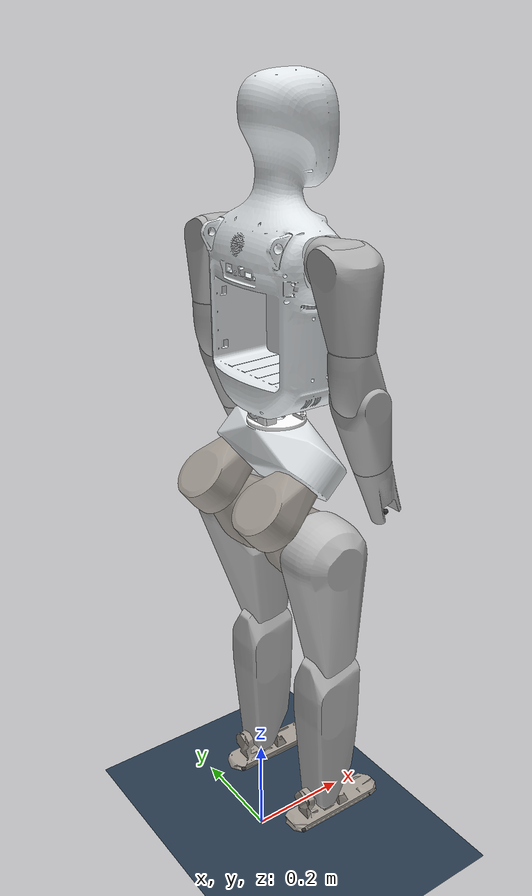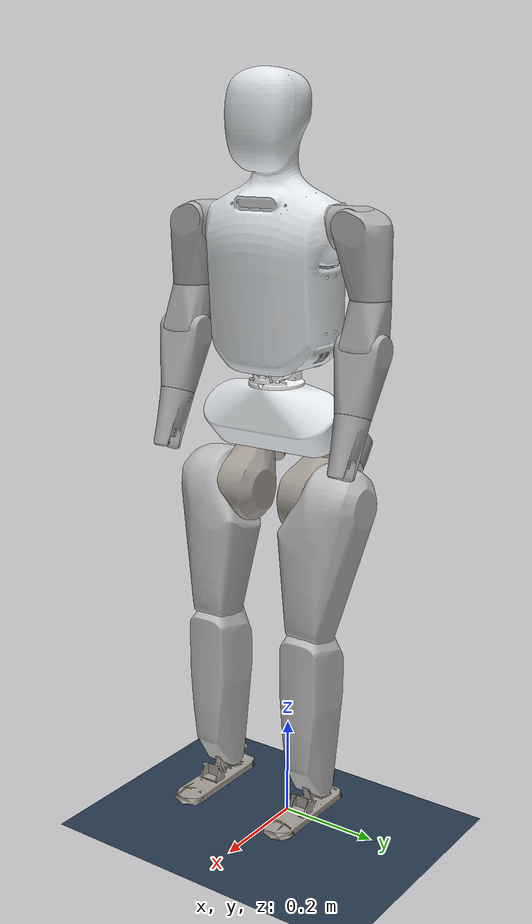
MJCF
<mujoco model="E1_1118">
  <compiler angle="radian" meshdir="meshes/"/>

  <default>
    <joint damping="0.001" armature="0.03" frictionloss="0.1"/>
  </default>
  <asset>
    <texture type="skybox" builtin="gradient" rgb1="0.3 0.5 0.7" rgb2="0 0 0" width="512" height="512"/>
    <texture name="texplane" type="2d" builtin="checker" rgb1=".2 .3 .4" rgb2=".1 0.15 0.2"
        width="512" height="512" mark="cross" markrgb=".8 .8 .8"/>

    <material name="matplane" reflectance="0." texture="texplane" texrepeat="1 1" texuniform="true"/>
    <mesh name="base_link" file="base_link.STL"/>
    <mesh name="waist_yaw_link" file="waist_yaw_link.STL"/>
    <mesh name="waist_roll_link" file="waist_roll_link.STL"/>
    <mesh name="r_arm_shoulder_pitch_link" file="r_arm_shoulder_pitch_link.STL"/>
    <mesh name="r_arm_shoulder_roll_link" file="r_arm_shoulder_roll_link.STL"/>
    <mesh name="r_arm_shoulder_yaw_link" file="r_arm_shoulder_yaw_link.STL"/>
    <mesh name="r_arm_elbow_pitch_link" file="r_arm_elbow_pitch_link.STL"/>
    <mesh name="r_arm_elbow_yaw_link" file="r_arm_elbow_yaw_link.STL"/>
    <mesh name="l_arm_shoulder_pitch_link" file="l_arm_shoulder_pitch_link.STL"/>
    <mesh name="l_arm_shoulder_roll_link" file="l_arm_shoulder_roll_link.STL"/>
    <mesh name="l_arm_shoulder_yaw_link" file="l_arm_shoulder_yaw_link.STL"/>
    <mesh name="l_arm_elbow_pitch_link" file="l_arm_elbow_pitch_link.STL"/>
    <mesh name="l_arm_elbow_yaw_link" file="l_arm_elbow_yaw_link.STL"/>
    <mesh name="r_leg_hip_yaw_link" file="r_leg_hip_yaw_link.STL"/>
    <mesh name="r_leg_hip_roll_link" file="r_leg_hip_roll_link.STL"/>
    <mesh name="r_leg_hip_pitch_link" file="r_leg_hip_pitch_link.STL"/>
    <mesh name="r_leg_knee_link" file="r_leg_knee_link.STL"/>
    <mesh name="r_leg_ankle_pitch_link" file="r_leg_ankle_pitch_link.STL"/>
    <mesh name="r_leg_ankle_roll_link" file="r_leg_ankle_roll_link.STL"/>
    <mesh name="l_leg_hip_yaw_link" file="l_leg_hip_yaw_link.STL"/>
    <mesh name="l_leg_hip_roll_link" file="l_leg_hip_roll_link.STL"/>
    <mesh name="l_leg_hip_pitch_link" file="l_leg_hip_pitch_link.STL"/>
    <mesh name="l_leg_knee_link" file="l_leg_knee_link.STL"/>
    <mesh name="l_leg_ankle_pitch_link" file="l_leg_ankle_pitch_link.STL"/>
    <mesh name="l_leg_ankle_roll_link" file="l_leg_ankle_roll_link.STL"/>
  </asset>

  <worldbody>
   <light directional="true" diffuse=".4 .4 .4" specular="0.1 0.1 0.1" pos="0 0 5.0" dir="0 0 -1" castshadow="false"/>
    <light directional="true" diffuse=".6 .6 .6" specular="0.2 0.2 0.2" pos="0 0 4" dir="0 0 -1"/>
    <geom name="ground" type="plane" size="0 0 1" pos="0.001 0 0" quat="1 0 0 0" material="matplane" condim="3" conaffinity='15'/>
    <body name="base_link" pos='0.0 0 0.85'>
      <inertial pos="0.046052 4.4711e-05 0.0021883" quat="0.654742 0.65493 -0.267018 0.266608" mass="3.6563" diaginertia="0.00948641 0.00787469 0.0043435"/>
      <geom type="mesh" mesh="base_link" contype="0" conaffinity="0" group="2" rgba="0.89804 0.91765 0.92941 1"/>
      <freejoint name="root" />
      <site name='imu' size='0.01' pos='0.0 0 0.0'/>
      <geom size="0.05 0.125 0.05" pos="0.07 0 0" type="box" rgba="0.89804 0.91765 0.92941 1" group="3"/>

      <body name="l_leg_hip_yaw_link" pos="0.054916 0.09 0.0038519" quat="0.923858 0 0.382735 0">
        <inertial pos="-0.017915 1.0596e-05 -0.10097" quat="0.999947 0.0101426 -0.00147073 -0.000244095" mass="1.4816" diaginertia="0.00247071 0.00140314 0.00131275"/>
        <geom type="mesh" mesh="l_leg_hip_yaw_link" contype="0" conaffinity="0" group="2" rgba="0.64706 0.61961 0.58824 1"/>
        <joint name="l_leg_hip_yaw_joint" pos="0 0 0" axis="0 0 1" range="-0.7 0.92"/>
        <geom size="0.05 0.005" pos="-0.02 0 -0.12" quat="0.707247 0 0.706967 0" type="cylinder" rgba="0.64706 0.61961 0.58824 1" group="3"/>
        <body name="l_leg_hip_roll_link" pos="0 0 -0.1185">
          <inertial pos="0.085701 -0.016584 -7.9104e-05" quat="0.494569 0.502567 0.504427 0.498379" mass="1.9235" diaginertia="0.00389647 0.00238089 0.00187874"/>
          <geom type="mesh" mesh="l_leg_hip_roll_link" contype="0" conaffinity="0" group="2" rgba="0.64706 0.61961 0.58824 1"/>
          <joint name="l_leg_hip_roll_joint" pos="0 0 0" axis="1 0 0" range="-0.7 0.61"/>
          <body name="l_leg_hip_pitch_link" pos="0.101 0 0" quat="0.923858 0 -0.382735 0">
            <inertial pos="0.014299 0.041463 -0.052859" quat="0.709992 -0.0888027 -0.0624697 0.69579" mass="4.147" diaginertia="0.0217231 0.0179788 0.00470995"/>
            <geom type="mesh" mesh="l_leg_hip_pitch_link" contype="0" conaffinity="0" group="2" rgba="0.75294 0.75294 0.75294 1"/>
            <joint name="l_leg_hip_pitch_joint" pos="0 0 0" axis="0 1 0" range="-1.48 0.87"/>
            <geom size="0.06 0.035" pos="0.03 0.02 0.02" quat="0.707105 0.707108 0 0" type="cylinder" rgba="0.75294 0.75294 0.75294 1" group="3"/>
            <geom size="0.07 0.035" pos="0.025 0.015 -0.155" type="cylinder" rgba="0.75294 0.75294 0.75294 1" group="3"/>
            <body name="l_leg_knee_link" pos="0.022251 0 -0.25403" quat="1 -1.4883e-05 0 0">
              <inertial pos="0.013831 0.017997 -0.12305" quat="0.705052 0.0134527 0.0111471 0.70894" mass="3.6766" diaginertia="0.0180812 0.0172019 0.00158974"/>
              <geom type="mesh" mesh="l_leg_knee_link" contype="0" conaffinity="0" group="2" rgba="0.75294 0.75294 0.75294 1"/>
              <joint name="l_leg_knee_joint" pos="0 0 0" axis="0 1 0" range="0 2.36"/>
              <geom size="0.06 0.1" pos="0.01 0.015 -0.17" type="cylinder" rgba="0.75294 0.75294 0.75294 1" group="3"/>
              <body name="l_leg_ankle_pitch_link" pos="3.9185e-05 0.018243 -0.315">
                <inertial pos="-0.0088522 -0.00030887 -6.821e-07" quat="0.5068 0.506725 0.493112 0.493178" mass="0.18171" diaginertia="4.45278e-05 3.7101e-05 2.32862e-05"/>
                <geom type="mesh" mesh="l_leg_ankle_pitch_link" contype="0" conaffinity="0" group="2" rgba="0.75294 0.75294 0.75294 1"/>
                <joint name="l_leg_ankle_pitch_joint" pos="0 0 0" axis="0 1 0" range="-1.01 0.42"/>
                <body name="l_leg_ankle_roll_link" quat="1 0 -5.1035e-05 0">
                  <inertial pos="0.021092 -7.0109e-05 -0.03295" quat="0.00102853 0.709531 -0.000682395 0.704673" mass="0.56573" diaginertia="0.00107334 0.001019 0.000195854"/>
	                  <geom type="mesh" mesh="l_leg_ankle_roll_link" contype="0" conaffinity="0" group="2" rgba="0.64706 0.61961 0.58824 1"/>
	                  <joint name="l_leg_ankle_roll_joint" pos="0 0 0" axis="1 0 0" range="-0.26 0.26"/>
	                  <geom size="0.1075 0.03 0.013" pos="0.036 -0.0005 -0.048" type="box" rgba="0.64706 0.61961 0.58824 1" group="3"/>
	                  <body name="l_foot_sphere_1_link" pos="-0.055 0.025 -0.0495">
	                    <inertial pos="0 0 0" mass="0.001" diaginertia="1e-7 1e-7 1e-7"/>
	                    <geom type="sphere" size="0.005" rgba="0.2 0.2 0.2 1" contype="0" conaffinity="0" density="0" group="1"/>
	                    <geom name="l_foot_sphere_1_link" type="sphere" size="0.005"/>
	                  </body>
	                  <body name="l_foot_sphere_2_link" pos="-0.055 -0.025 -0.0495">
	                    <inertial pos="0 0 0" mass="0.001" diaginertia="1e-7 1e-7 1e-7"/>
	                    <geom type="sphere" size="0.005" rgba="0.2 0.2 0.2 1" contype="0" conaffinity="0" density="0" group="1"/>
	                    <geom name="l_foot_sphere_2_link" type="sphere" size="0.005"/>
	                  </body>
	                  <body name="l_foot_sphere_3_link" pos="0.115 0.025 -0.0495">
	                    <inertial pos="0 0 0" mass="0.001" diaginertia="1e-7 1e-7 1e-7"/>
	                    <geom type="sphere" size="0.005" rgba="0.2 0.2 0.2 1" contype="0" conaffinity="0" density="0" group="1"/>
	                    <geom name="l_foot_sphere_3_link" type="sphere" size="0.005"/>
	                  </body>
	                  <body name="l_foot_sphere_4_link" pos="0.115 -0.025 -0.0495">
	                    <inertial pos="0 0 0" mass="0.001" diaginertia="1e-7 1e-7 1e-7"/>
	                    <geom type="sphere" size="0.005" rgba="0.2 0.2 0.2 1" contype="0" conaffinity="0" density="0" group="1"/>
	                    <geom name="l_foot_sphere_4_link" type="sphere" size="0.005"/>
	                  </body>
	                  <body name="l_foot_sphere_5_link" pos="0.14 0 -0.0495">
	                    <inertial pos="0 0 0" mass="0.001" diaginertia="1e-7 1e-7 1e-7"/>
	                    <geom type="sphere" size="0.005" rgba="0.2 0.2 0.2 1" contype="0" conaffinity="0" density="0" group="1"/>
	                    <geom name="l_foot_sphere_5_link" type="sphere" size="0.005"/>
	                  </body>
	                </body>
	              </body>
            </body>
          </body>
        </body>
      </body>

      <body name="r_leg_hip_yaw_link" pos="0.054916 -0.09 0.0038519" quat="0.923858 0 0.382735 0">
        <inertial pos="-0.017915 -1.0598e-05 -0.10263" quat="0.999946 -0.010146 -0.00238304 0.000233282" mass="1.4816" diaginertia="0.00247073 0.00140314 0.00131274"/>
        <geom type="mesh" mesh="r_leg_hip_yaw_link" contype="0" conaffinity="0" group="2" rgba="0.64706 0.61961 0.58824 1"/>
        <joint name="r_leg_hip_yaw_joint" pos="0 0 0" axis="0 0 1" range="-0.92 0.7"/>
        <geom size="0.05 0.005" pos="-0.02 0 -0.12" quat="0.707247 0 0.706967 0" type="cylinder" rgba="0.64706 0.61961 0.58824 1" group="3"/>
        <body name="r_leg_hip_roll_link" pos="0 0 -0.1185">
          <inertial pos="0.086978 0.016584 -7.9149e-05" quat="0.497566 0.505487 0.503353 0.493505" mass="1.9235" diaginertia="0.00389648 0.00238095 0.00187866"/>
          <geom type="mesh" mesh="r_leg_hip_roll_link" contype="0" conaffinity="0" group="2" rgba="0.64706 0.61961 0.58824 1"/>
          <joint name="r_leg_hip_roll_joint" pos="0 0 0" axis="1 0 0" range="-0.61 0.7"/>
          <body name="r_leg_hip_pitch_link" pos="0.101 0 0" quat="0.923858 0 -0.382735 0">
            <inertial pos="0.014292 -0.041458 -0.052861" quat="0.695757 -0.0625051 -0.0888325 0.710017" mass="4.1464" diaginertia="0.0217201 0.0179762 0.00470924"/>
            <geom type="mesh" mesh="r_leg_hip_pitch_link" contype="0" conaffinity="0" group="2" rgba="0.75294 0.75294 0.75294 1"/>
            <joint name="r_leg_hip_pitch_joint" pos="0 0 0" axis="0 1 0" range="-1.48 0.87"/>
            <geom size="0.06 0.035" pos="0.03 -0.02 0.02" quat="0.707105 0.707108 0 0" type="cylinder" rgba="0.75294 0.75294 0.75294 1" group="3"/>
            <geom size="0.07 0.035" pos="0.025 -0.015 -0.155" type="cylinder" rgba="0.75294 0.75294 0.75294 1" group="3"/>
            <body name="r_leg_knee_link" pos="0.022251 0 -0.25403" quat="1 1.4883e-05 0 0">
              <inertial pos="0.013832 -0.017558 -0.12305" quat="0.708877 0.0111556 0.0134579 0.705115" mass="3.6767" diaginertia="0.0180822 0.0172029 0.00158981"/>
              <geom type="mesh" mesh="r_leg_knee_link" contype="0" conaffinity="0" group="2" rgba="0.75294 0.75294 0.75294 1"/>
              <joint name="r_leg_knee_joint" pos="0 0 0" axis="0 1 0" range="0 2.36"/>
              <geom size="0.06 0.1" pos="0.01 -0.015 -0.17" type="cylinder" rgba="0.75294 0.75294 0.75294 1" group="3"/>
              <body name="r_leg_ankle_pitch_link" pos="3.9185e-05 -0.018242 -0.315">
                <inertial pos="-0.0088522 0.00030863 -2.4947e-07" quat="0.493138 0.493155 0.506773 0.506749" mass="0.18171" diaginertia="4.45277e-05 3.7101e-05 2.32863e-05"/>
                <geom type="mesh" mesh="r_leg_ankle_pitch_link" contype="0" conaffinity="0" group="2" rgba="0.75294 0.75294 0.75294 1"/>
                <joint name="r_leg_ankle_pitch_joint" pos="0 0 0" axis="0 1 0" range="-1.01 0.42"/>
                <body name="r_leg_ankle_roll_link">
                  <inertial pos="0.021092 6.9792e-05 -0.03295" quat="-0.00102811 0.709531 0.000682639 0.704673" mass="0.56573" diaginertia="0.00107334 0.001019 0.000195854"/>
	                  <geom type="mesh" mesh="r_leg_ankle_roll_link" contype="0" conaffinity="0" group="2" rgba="0.64706 0.61961 0.58824 1"/>
	                  <joint name="r_leg_ankle_roll_joint" pos="0 0 0" axis="1 0 0" range="-0.26 0.26"/>
	                  <geom size="0.1075 0.03 0.013" pos="0.036 0.0005 -0.048" type="box" rgba="0.64706 0.61961 0.58824 1" group="3"/>
	                  <body name="r_foot_sphere_1_link" pos="-0.055 0.025 -0.0495">
	                    <inertial pos="0 0 0" mass="0.001" diaginertia="1e-7 1e-7 1e-7"/>
	                    <geom type="sphere" size="0.005" rgba="0.2 0.2 0.2 1" contype="0" conaffinity="0" density="0" group="1"/>
	                    <geom name="r_foot_sphere_1_link" type="sphere" size="0.005"/>
	                  </body>
	                  <body name="r_foot_sphere_2_link" pos="-0.055 -0.025 -0.0495">
	                    <inertial pos="0 0 0" mass="0.001" diaginertia="1e-7 1e-7 1e-7"/>
	                    <geom type="sphere" size="0.005" rgba="0.2 0.2 0.2 1" contype="0" conaffinity="0" density="0" group="1"/>
	                    <geom name="r_foot_sphere_2_link" type="sphere" size="0.005"/>
	                  </body>
	                  <body name="r_foot_sphere_3_link" pos="0.115 0.025 -0.0495">
	                    <inertial pos="0 0 0" mass="0.001" diaginertia="1e-7 1e-7 1e-7"/>
	                    <geom type="sphere" size="0.005" rgba="0.2 0.2 0.2 1" contype="0" conaffinity="0" density="0" group="1"/>
	                    <geom name="r_foot_sphere_3_link" type="sphere" size="0.005"/>
	                  </body>
	                  <body name="r_foot_sphere_4_link" pos="0.115 -0.025 -0.0495">
	                    <inertial pos="0 0 0" mass="0.001" diaginertia="1e-7 1e-7 1e-7"/>
	                    <geom type="sphere" size="0.005" rgba="0.2 0.2 0.2 1" contype="0" conaffinity="0" density="0" group="1"/>
	                    <geom name="r_foot_sphere_4_link" type="sphere" size="0.005"/>
	                  </body>
	                  <body name="r_foot_sphere_5_link" pos="0.14 0 -0.0495">
	                    <inertial pos="0 0 0" mass="0.001" diaginertia="1e-7 1e-7 1e-7"/>
	                    <geom type="sphere" size="0.005" rgba="0.2 0.2 0.2 1" contype="0" conaffinity="0" density="0" group="1"/>
	                    <geom name="r_foot_sphere_5_link" type="sphere" size="0.005"/>
	                  </body>
	                </body>
	              </body>
            </body>
          </body>
        </body>
      </body>

      <body name="waist_yaw_link" pos="0.041941 0 0.064775">
        <inertial pos="-0.0039794 2.0146e-05 0.019034" quat="0.00016694 0.809713 0.00546662 0.586801" mass="0.84518" diaginertia="0.000705839 0.000618348 0.000490264"/>
        <geom type="mesh" mesh="waist_yaw_link" contype="0" conaffinity="0" group="2" rgba="1 1 1 1"/>
        <joint name="waist_yaw_joint" pos="0 0 0" axis="0 0 1" range="-1.57 1.57"/>
        <body name="waist_roll_link" pos="0 0 0.0282">
          <inertial pos="-0.00055893 -9.001e-05 0.16997" quat="0.999498 -0.00768721 -0.0306954 -0.00162825" mass="8.0324" diaginertia="0.0609558 0.0394026 0.0360935"/>
          <geom type="mesh" mesh="waist_roll_link" contype="0" conaffinity="0" group="2" rgba="0.89804 0.91765 0.92941 1"/>
          <geom size="0.08 0.1 0.28" pos="0 0 0.27" type="box" rgba="0.89804 0.91765 0.92941 1" group="3"/>
          <body name="l_arm_shoulder_pitch_link" pos="-0.00096786 0.10919 0.25375" quat="0.996195 0.0871493 0 0">
            <inertial pos="0.0010157 0.051142 -2.0719e-05" quat="0.687384 0.625704 0.273845 0.246994" mass="0.65049" diaginertia="0.000382964 0.000359435 0.000356701"/>
            <geom type="mesh" mesh="l_arm_shoulder_pitch_link" contype="0" conaffinity="0" group="2" rgba="0.69804 0.69804 0.69804 1"/>
            <joint name="l_arm_shoulder_pitch_joint" pos="0 0 0" axis="0 1 0" range="-2.84 2.84"/>
            <body name="l_arm_shoulder_roll_link" pos="0.00096786 0.058729 0" quat="0.996195 -0.0871493 0 0">
              <inertial pos="-0.0003956 0.028602 -0.069119" quat="0.994774 0.102035 0.00229799 0.00293351" mass="0.76829" diaginertia="0.00104702 0.000884959 0.00044337"/>
              <geom type="mesh" mesh="l_arm_shoulder_roll_link" contype="0" conaffinity="0" group="2" rgba="0.69804 0.69804 0.69804 1"/>
              <joint name="l_arm_shoulder_roll_joint" pos="0 0 0" axis="1 0 0" range="0 2.36"/>
              <geom size="0.04 0.085" pos="0 0.03 -0.08" quat="0.99875 0.0499792 0 0" type="cylinder" rgba="0.69804 0.69804 0.69804 1" group="3"/>
              <body name="l_arm_shoulder_yaw_link" pos="-0.00099601 0.030407 -0.10688">
                <inertial pos="0.010623 0.0011472 -0.027097" quat="0.995699 0.0925672 0.00223947 0.00299605" mass="0.76829" diaginertia="0.00104702 0.000906084 0.000422216"/>
                <geom type="mesh" mesh="l_arm_shoulder_yaw_link" contype="0" conaffinity="0" group="2" rgba="0.69804 0.69804 0.69804 1"/>
                <joint name="l_arm_shoulder_yaw_joint" pos="0 0 0" axis="0 0 1" range="-2.62 2.62"/>
                <body name="l_arm_elbow_pitch_link" pos="0.020034 0.00026879 -0.10514" quat="0.984797 0 -0.173709 0">
                  <inertial pos="-0.0093147 6.2366e-05 -0.071674" quat="0.703898 0.0322658 0.0394978 0.708468" mass="0.69323" diaginertia="0.000753089 0.000660047 0.000343344"/>
                  <geom type="mesh" mesh="l_arm_elbow_pitch_link" contype="0" conaffinity="0" group="2" rgba="0.69804 0.69804 0.69804 1"/>
                  <joint name="l_arm_elbow_pitch_joint" pos="0 0 0" axis="0 1 0" range="-1.92081 0.51919"/>
                  <geom size="0.0275 0.085" pos="-0.02 0.005 -0.12" type="cylinder" rgba="0.69804 0.69804 0.69804 1" group="3"/>
	                  <body name="l_arm_elbow_yaw_link" pos="-0.0099866 -0.00047817 -0.11036">
	                    <inertial pos="-0.00011941 -0.00074665 -0.050578" quat="0.707528 0.00297815 -0.00316287 0.706672" mass="0.57183" diaginertia="0.000310953 0.00029045 0.000137787"/>
	                    <geom type="mesh" mesh="l_arm_elbow_yaw_link" contype="0" conaffinity="0" group="2" rgba="0.69804 0.69804 0.69804 1"/>
	                    <joint name="l_arm_elbow_yaw_joint" pos="0 0 0" axis="0 0 1" range="-2.79 2.79"/>
	                    <body name="l_hand_sphere_link" pos="0 0 -0.11">
	                      <inertial pos="0 0 0" mass="0.001" diaginertia="1e-7 1e-7 1e-7"/>
	                      <geom type="sphere" size="0.005" rgba="0.2 0.2 0.2 1" contype="0" conaffinity="0" density="0" group="1"/>
	                      <geom name="l_hand_sphere_link" type="sphere" size="0.005"/>
	                    </body>
	                  </body>
	                </body>
	              </body>
            </body>
          </body>
          <body name="r_arm_shoulder_pitch_link" pos="-0.00096779 -0.10919 0.25375" quat="0.996195 -0.0871493 0 0">
            <inertial pos="0.0010142 -0.051145 -2.2863e-05" quat="0.627036 0.686405 -0.246434 -0.273758" mass="0.65037" diaginertia="0.000382946 0.000359386 0.000356668"/>
            <geom type="mesh" mesh="r_arm_shoulder_pitch_link" contype="0" conaffinity="0" group="2" rgba="0.69804 0.69804 0.69804 1"/>
            <joint name="r_arm_shoulder_pitch_joint" pos="0 0 0" axis="0 1 0" range="-2.84 2.84"/>
            <body name="r_arm_shoulder_roll_link" pos="0.00096779 -0.058729 0" quat="0.996195 0.0871493 0 0">
              <inertial pos="-0.00039648 -0.028601 -0.069117" quat="0.994774 -0.102032 0.00232539 -0.00290695" mass="0.7683" diaginertia="0.00104692 0.000884878 0.000443301"/>
              <geom type="mesh" mesh="r_arm_shoulder_roll_link" contype="0" conaffinity="0" group="2" rgba="0.69804 0.69804 0.69804 1"/>
              <joint name="r_arm_shoulder_roll_joint" pos="0 0 0" axis="1 0 0" range="-2.36 0"/>
              <geom size="0.04 0.085" pos="0 -0.03 -0.08" quat="0.99875 -0.0499792 0 0" type="cylinder" rgba="0.69804 0.69804 0.69804 1" group="3"/>
              <body name="r_arm_shoulder_yaw_link" pos="-0.00099601 -0.030407 -0.10688">
                <inertial pos="0.010623 -0.0011472 -0.027097" quat="0.995699 -0.0925672 0.00223947 -0.00299605" mass="0.76829" diaginertia="0.00104702 0.000906084 0.000422216"/>
                <geom type="mesh" mesh="r_arm_shoulder_yaw_link" contype="0" conaffinity="0" group="2" rgba="0.69804 0.69804 0.69804 1"/>
                <joint name="r_arm_shoulder_yaw_joint" pos="0 0 0" axis="0 0 1" range="-2.62 2.62"/>
                <body name="r_arm_elbow_pitch_link" pos="0.020034 -0.00026879 -0.10514" quat="0.984797 0 -0.173709 0">
                  <inertial pos="-0.0093153 -6.2064e-05 -0.071674" quat="0.708418 0.0394785 0.032258 0.70395" mass="0.69324" diaginertia="0.000753098 0.000660045 0.000343357"/>
                  <geom type="mesh" mesh="r_arm_elbow_pitch_link" contype="0" conaffinity="0" group="2" rgba="0.69804 0.69804 0.69804 1"/>
                  <joint name="r_arm_elbow_pitch_joint" pos="0 0 0" axis="0 1 0" range="-1.92081 0.51919"/>
                  <geom size="0.0275 0.085" pos="-0.02 -0.005 -0.12" type="cylinder" rgba="0.69804 0.69804 0.69804 1" group="3"/>
	                  <body name="r_arm_elbow_yaw_link" pos="-0.0099866 0.00047817 -0.11036">
	                    <inertial pos="-0.00011793 0.000746 -0.050579" quat="0.706708 -0.00315369 0.0029584 0.707492" mass="0.57183" diaginertia="0.000310973 0.00029042 0.000137797"/>
	                    <geom type="mesh" mesh="r_arm_elbow_yaw_link" contype="0" conaffinity="0" group="2" rgba="0.69804 0.69804 0.69804 1"/>
	                    <joint name="r_arm_elbow_yaw_joint" pos="0 0 0" axis="0 0 1" range="-2.79 2.79"/>
	                    <body name="r_hand_sphere_link" pos="0 0 -0.11">
	                      <inertial pos="0 0 0" mass="0.001" diaginertia="1e-7 1e-7 1e-7"/>
	                      <geom type="sphere" size="0.005" rgba="0.2 0.2 0.2 1" contype="0" conaffinity="0" density="0" group="1"/>
	                      <geom name="r_hand_sphere_link" type="sphere" size="0.005"/>
	                    </body>
	                  </body>
	                </body>
	              </body>
            </body>
          </body>
        </body>
      </body>
    </body>
  </worldbody>

  <actuator>
    <motor name='l_leg_hip_yaw'    	    joint='l_leg_hip_yaw_joint'/>
    <motor name='l_leg_hip_roll'    	  joint='l_leg_hip_roll_joint'/>
    <motor name='l_leg_hip_pitch'  	    joint='l_leg_hip_pitch_joint'/>
    <motor name='l_leg_knee'    	      joint='l_leg_knee_joint'/>
    <motor name='l_leg_ankle_pitch'     joint='l_leg_ankle_pitch_joint'/>
    <motor name='l_leg_ankle_roll'      joint='l_leg_ankle_roll_joint'/>

    <motor name='r_leg_hip_yaw'    	    joint='r_leg_hip_yaw_joint'/>
    <motor name='r_leg_hip_roll'    	  joint='r_leg_hip_roll_joint'/>
    <motor name='r_leg_hip_pitch'    	  joint='r_leg_hip_pitch_joint'/>
    <motor name='r_leg_knee'    	      joint='r_leg_knee_joint'/>
    <motor name='r_leg_ankle_pitch'     joint='r_leg_ankle_pitch_joint'/>
    <motor name='r_leg_ankle_roll'      joint='r_leg_ankle_roll_joint'/>

    <motor name='waist_yaw'             joint='waist_yaw_joint'/>

    <motor name='l_arm_shoulder_pitch'  joint='l_arm_shoulder_pitch_joint'/>
    <motor name='l_arm_shoulder_roll'   joint='l_arm_shoulder_roll_joint'/>
    <motor name='l_arm_shoulder_yaw'    joint='l_arm_shoulder_yaw_joint'/>
    <motor name='l_arm_elbow_pitch'     joint='l_arm_elbow_pitch_joint'/>
    <motor name='l_arm_elbow_yaw'       joint='l_arm_elbow_yaw_joint'/>

    <motor name='r_arm_shoulder_pitch'  joint='r_arm_shoulder_pitch_joint'/>
    <motor name='r_arm_shoulder_roll'   joint='r_arm_shoulder_roll_joint'/>
    <motor name='r_arm_shoulder_yaw'    joint='r_arm_shoulder_yaw_joint'/>
    <motor name='r_arm_elbow_pitch'     joint='r_arm_elbow_pitch_joint'/>
    <motor name='r_arm_elbow_yaw'       joint='r_arm_elbow_yaw_joint'/>
  </actuator>

  <sensor>
      <framequat     name='orientation' objtype='site' noise='0.001' objname='imu'/>
      <framepos      name='position' objtype='site' noise='0.001' objname='imu'/>
      <gyro          name='angular-velocity'    site='imu' noise='0.005' cutoff='34.9'/>
      <velocimeter   name='linear-velocity'     site='imu' noise='0.001' cutoff='30'/>
  </sensor>

</mujoco>
